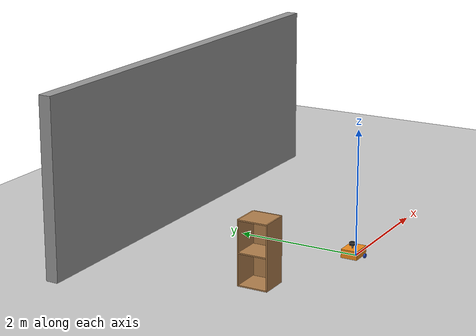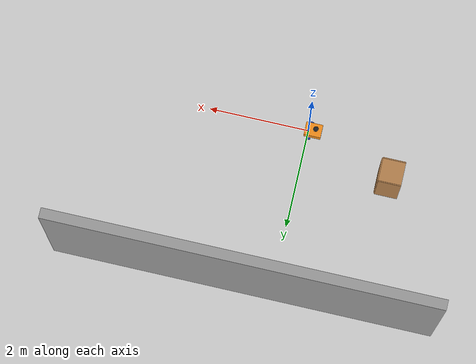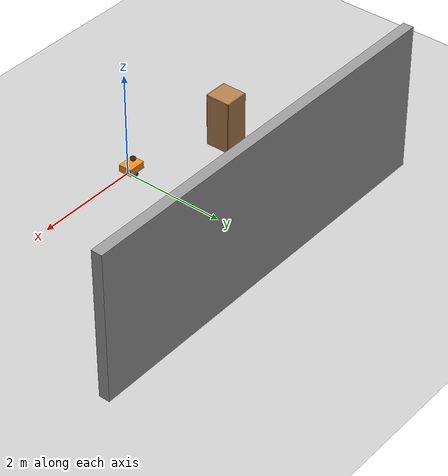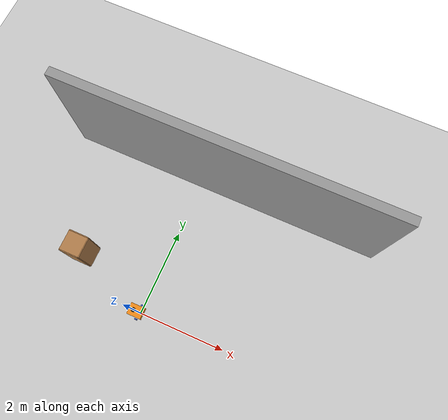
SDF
<sdf version="1.7">
 <world name="default">
  <light name="sun" type="directional">
   <pose>0 0 10 0 -0 0</pose>
   <diffuse>0.8 0.8 0.8 1</diffuse>
   <specular>0.2 0.2 0.2 1</specular>
   <attenuation>
    <range>1000</range>
    <constant>0.9</constant>
    <linear>0.01</linear>
    <quadratic>0.001</quadratic>
   </attenuation>
   <direction>-0.5 0.1 -0.9</direction>
   <spot><inner_angle>0</inner_angle><outer_angle>0</outer_angle><falloff>0</falloff></spot>
  </light>
  <model name="ground_plane">
   <static>1</static>
   <link name="link">
    <collision name="collision">
     <geometry><plane><normal>0 0 1</normal><size>100 100</size></plane></geometry>
     <surface>
      <contact><collide_bitmask>65535</collide_bitmask></contact>
      <friction><ode><mu>100</mu><mu2>50</mu2></ode></friction>
     </surface>
    </collision>
    <visual name="visual">
     <cast_shadows>0</cast_shadows>
     <geometry><plane><normal>0 0 1</normal><size>100 100</size></plane></geometry>
     <material>
      <script><uri>file://media/materials/scripts/gazebo.material</uri><name>Gazebo/Grey</name></script>
     </material>
    </visual>
   </link>
  </model>
  <gravity>0 0 -9.8</gravity>
  <magnetic_field>6e-06 2.3e-05 -4.2e-05</magnetic_field>
  <atmosphere type="adiabatic"/>
  <physics type="ode">
   <max_step_size>0.001</max_step_size>
   <real_time_factor>1</real_time_factor>
   <real_time_update_rate>1000</real_time_update_rate>
  </physics>
  <scene><ambient>0.4 0.4 0.4 1</ambient><background>0.7 0.7 0.7 1</background><shadows>1</shadows></scene>
  <spherical_coordinates>
   <surface_model>EARTH_WGS84</surface_model>
   <latitude_deg>0</latitude_deg>
   <longitude_deg>0</longitude_deg>
   <elevation>0</elevation>
   <heading_deg>0</heading_deg>
  </spherical_coordinates>
  <model name="my_bot1">
   <link name="base_link">
    <inertial>
     <pose>-0.067475 0 0.081082 0 -0 0</pose>
     <mass>0.61</mass>
     <inertia>
      <ixx>0.00561212</ixx>
      <ixy>0</ixy>
      <ixz>0.000452976</ixz>
      <iyy>0.00760557</iyy>
      <iyz>0</iyz>
      <izz>0.00797093</izz>
     </inertia>
    </inertial>
    <collision name="base_link_fixed_joint_lump__chassis_collision">
     <pose>-0.0585 0 0.059 0 -0 0</pose>
     <geometry><box><size>0.335 0.265 0.138</size></box></geometry>
    </collision>
    <collision name="base_link_fixed_joint_lump__caster_wheel_collision_1">
     <pose>-0.151 0 -0.024 0 -0 0</pose>
     <geometry><sphere><radius>0.01</radius></sphere></geometry>
     <surface><friction><ode><mu>0.001</mu><mu2>0.001</mu2></ode></friction></surface>
    </collision>
    <collision name="base_link_fixed_joint_lump__laser_frame_collision_2">
     <pose>-0.104 0 0.202 0 -0 0</pose>
     <geometry><cylinder><length>0.04</length><radius>0.05</radius></cylinder></geometry>
    </collision>
    <visual name="base_link_fixed_joint_lump__chassis_visual">
     <pose>-0.0585 0 0.059 0 -0 0</pose>
     <geometry><box><size>0.335 0.265 0.138</size></box></geometry>
     <material>
      <script><name>Gazebo/Orange</name><uri>file://media/materials/scripts/gazebo.material</uri></script>
     </material>
    </visual>
    <visual name="base_link_fixed_joint_lump__caster_wheel_visual_1">
     <pose>-0.151 0 -0.024 0 -0 0</pose>
     <geometry><sphere><radius>0.01</radius></sphere></geometry>
     <material>
      <script><name>Gazebo/White</name><uri>file://media/materials/scripts/gazebo.material</uri></script>
     </material>
    </visual>
    <visual name="base_link_fixed_joint_lump__laser_frame_visual_2">
     <pose>-0.104 0 0.202 0 -0 0</pose>
     <geometry><cylinder><length>0.04</length><radius>0.05</radius></cylinder></geometry>
     <material>
      <script><name>Gazebo/Black</name><uri>file://media/materials/scripts/gazebo.material</uri></script>
     </material>
    </visual>
    <visual name="base_link_fixed_joint_lump__laser_frame_visual_3">
     <pose>-0.104 0 0.152 0 -0 0</pose>
     <geometry><cylinder><length>0.1</length><radius>0.01</radius></cylinder></geometry>
     <material>
      <script><name>Gazebo/Black</name><uri>file://media/materials/scripts/gazebo.material</uri></script>
     </material>
    </visual>
    <sensor name="laser" type="ray">
     <visualize>0</visualize>
     <update_rate>10</update_rate>
     <ray>
      <scan>
       <horizontal>
        <samples>360</samples>
        <min_angle>-3.14</min_angle>
        <max_angle>3.14</max_angle>
        <resolution>1</resolution>
       </horizontal>
       <vertical><samples>1</samples><min_angle>0</min_angle><max_angle>0</max_angle></vertical>
      </scan>
      <range><min>0.3</min><max>12</max></range>
     </ray>
     <plugin name="laser_controller" filename="libgazebo_ros_ray_sensor.so">
      <ros><argument>~/out:=scan</argument></ros>
      <output_type>sensor_msgs/LaserScan</output_type>
      <frame_name>laser_frame</frame_name>
     </plugin>
     <pose>-0.104 0 0.202 0 -0 0</pose>
    </sensor>
   </link>
   <joint name="left_wheel_joint" type="revolute">
    <pose relative_to="base_link">0 0.166 0 -1.5708 0 0</pose>
    <parent>base_link</parent>
    <child>left_wheel</child>
    <axis>
     <xyz>0 0 1</xyz>
     <limit><lower>-1e+16</lower><upper>1e+16</upper></limit>
     <dynamics><spring_reference>0</spring_reference><spring_stiffness>0</spring_stiffness></dynamics>
    </axis>
   </joint>
   <link name="left_wheel">
    <pose relative_to="left_wheel_joint">0 0 0 0 -0 0</pose>
    <inertial>
     <mass>0.05</mass>
     <inertia>
      <ixx>1.72667e-05</ixx>
      <ixy>0</ixy>
      <ixz>0</ixz>
      <iyy>1.72667e-05</iyy>
      <iyz>0</iyz>
      <izz>2.89e-05</izz>
     </inertia>
    </inertial>
    <collision name="left_wheel_collision">
     <geometry><sphere><radius>0.034</radius></sphere></geometry>
    </collision>
    <visual name="left_wheel_visual">
     <geometry><cylinder><length>0.026</length><radius>0.034</radius></cylinder></geometry>
     <material>
      <script><name>Gazebo/Blue</name><uri>file://media/materials/scripts/gazebo.material</uri></script>
     </material>
    </visual>
   </link>
   <joint name="right_wheel_joint" type="revolute">
    <pose relative_to="base_link">0 -0.166 0 1.5708 -0 0</pose>
    <parent>base_link</parent>
    <child>right_wheel</child>
    <axis>
     <xyz>0 0 -1</xyz>
     <limit><lower>-1e+16</lower><upper>1e+16</upper></limit>
     <dynamics><spring_reference>0</spring_reference><spring_stiffness>0</spring_stiffness></dynamics>
    </axis>
   </joint>
   <link name="right_wheel">
    <pose relative_to="right_wheel_joint">0 0 0 0 -0 0</pose>
    <inertial>
     <mass>0.05</mass>
     <inertia>
      <ixx>1.72667e-05</ixx>
      <ixy>0</ixy>
      <ixz>0</ixz>
      <iyy>1.72667e-05</iyy>
      <iyz>0</iyz>
      <izz>2.89e-05</izz>
     </inertia>
    </inertial>
    <collision name="right_wheel_collision">
     <geometry><sphere><radius>0.034</radius></sphere></geometry>
    </collision>
    <visual name="right_wheel_visual">
     <geometry><cylinder><length>0.026</length><radius>0.034</radius></cylinder></geometry>
     <material>
      <script><name>Gazebo/Blue</name><uri>file://media/materials/scripts/gazebo.material</uri></script>
     </material>
    </visual>
   </link>
   <static>0</static>
   <plugin name="gazebo_ros2_control" filename="libgazebo_ros2_control.so">
    <parameters>/home/focal/dev1_ws/install/tankbot_one/share/tankbot_one/config/my_controllers.yaml</parameters>
   </plugin>
   <pose>-0.038606 8.5e-05 0.033997 -1.7e-05 2.1e-05 0.001151</pose>
  </model>
  <model name="cabinet">
   <static>1</static>
   <link name="cabinet_bottom_plate">
    <inertial>
     <pose>0 0 -1 0 -0 0</pose>
     <inertia><ixx>2.05</ixx><ixy>0</ixy><ixz>0</ixz><iyy>2.05</iyy><iyz>0</iyz><izz>2.05</izz></inertia>
     <mass>25</mass>
    </inertial>
    <collision name="cabinet_bottom_plate_geom">
     <pose>0 0 0.01 0 -0 0</pose>
     <geometry><box><size>0.45 0.45 0.02</size></box></geometry>
    </collision>
    <visual name="cabinet_bottom_plate_geom_visual">
     <pose>0 0 0.01 0 -0 0</pose>
     <geometry><box><size>0.45 0.45 0.02</size></box></geometry>
     <material>
      <script><uri>file://media/materials/scripts/gazebo.material</uri><name>Gazebo/Wood</name></script>
     </material>
    </visual>
    <collision name="cabinet_bottom_plate_geom_cabinet_back_plate">
     <pose>0.235 0 0.51 0 -0 0</pose>
     <geometry><box><size>0.02 0.45 1.02</size></box></geometry>
    </collision>
    <visual name="cabinet_bottom_plate_geom_cabinet_back_plate_visual">
     <pose>0.235 0 0.51 0 -0 0</pose>
     <geometry><box><size>0.02 0.45 1.02</size></box></geometry>
     <material>
      <script><uri>file://media/materials/scripts/gazebo.material</uri><name>Gazebo/Wood</name></script>
     </material>
    </visual>
    <collision name="cabinet_bottom_plate_geom_cabinet_left_plate">
     <pose>0 0.235 0.51 0 -0 0</pose>
     <geometry><box><size>0.45 0.02 1.02</size></box></geometry>
    </collision>
    <visual name="cabinet_bottom_plate_geom_cabinet_left_plate_visual">
     <pose>0 0.235 0.51 0 -0 0</pose>
     <geometry><box><size>0.45 0.02 1.02</size></box></geometry>
     <material>
      <script><uri>file://media/materials/scripts/gazebo.material</uri><name>Gazebo/Wood</name></script>
     </material>
    </visual>
    <collision name="cabinet_bottom_plate_geom_cabinet_middle_plate">
     <pose>0 0 0.51 0 -0 0</pose>
     <geometry><box><size>0.45 0.45 0.02</size></box></geometry>
    </collision>
    <visual name="cabinet_bottom_plate_geom_cabinet_middle_plate_visual">
     <pose>0 0 0.51 0 -0 0</pose>
     <geometry><box><size>0.45 0.45 0.02</size></box></geometry>
     <material>
      <script><uri>file://media/materials/scripts/gazebo.material</uri><name>Gazebo/Wood</name></script>
     </material>
    </visual>
    <collision name="cabinet_bottom_plate_geom_cabinet_right_plate">
     <pose>0 -0.235 0.51 0 -0 0</pose>
     <geometry><box><size>0.45 0.02 1.02</size></box></geometry>
    </collision>
    <visual name="cabinet_bottom_plate_geom_cabinet_right_plate_visual">
     <pose>0 -0.235 0.51 0 -0 0</pose>
     <geometry><box><size>0.45 0.02 1.02</size></box></geometry>
     <material>
      <script><uri>file://media/materials/scripts/gazebo.material</uri><name>Gazebo/Wood</name></script>
     </material>
    </visual>
    <collision name="cabinet_bottom_plate_geom_cabinet_top_plate">
     <pose>0 0 1.01 0 -0 0</pose>
     <geometry><box><size>0.45 0.45 0.02</size></box></geometry>
    </collision>
    <visual name="cabinet_bottom_plate_geom_cabinet_top_plate_visual">
     <pose>0 0 1.01 0 -0 0</pose>
     <geometry><box><size>0.45 0.45 0.02</size></box></geometry>
     <material>
      <script><uri>file://media/materials/scripts/gazebo.material</uri><name>Gazebo/Wood</name></script>
     </material>
    </visual>
   </link>
   <pose>-1.76434 0.720535 0 0 -0 0</pose>
  </model>
  <model name="grey_wall">
   <static>1</static>
   <link name="link">
    <pose>0 0 1.4 0 -0 0</pose>
    <collision name="collision"><geometry><box><size>7.5 0.2 2.8</size></box></geometry></collision>
    <visual name="visual">
     <cast_shadows>0</cast_shadows>
     <geometry><box><size>7.5 0.2 2.8</size></box></geometry>
     <material>
      <script>
       <uri>model://grey_wall/materials/scripts</uri>
       <uri>model://grey_wall/materials/textures</uri>
       <name>vrc/grey_wall</name>
      </script>
     </material>
    </visual>
   </link>
   <pose>0.558685 3.38448 0 0 -0 0</pose>
  </model>
 </world>
</sdf>
